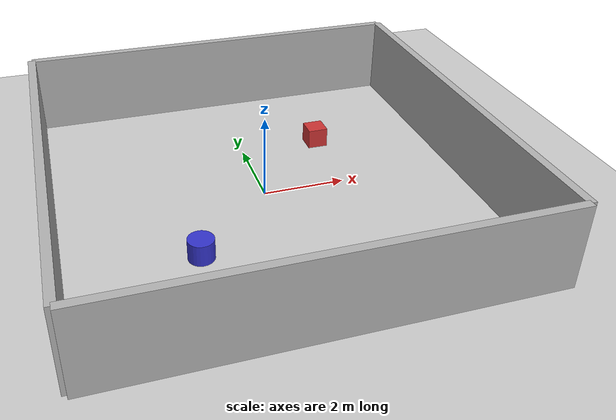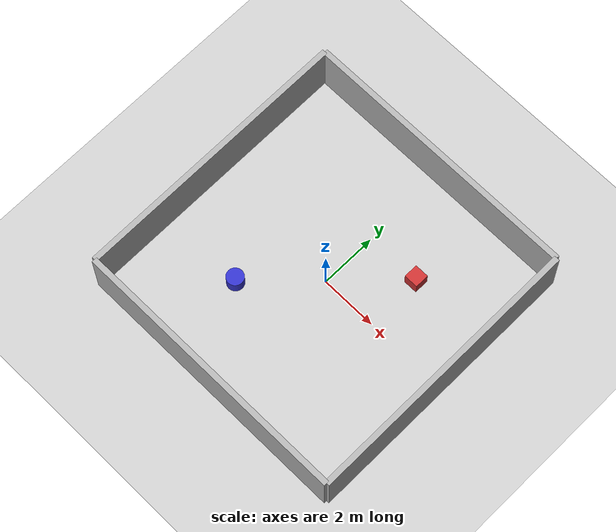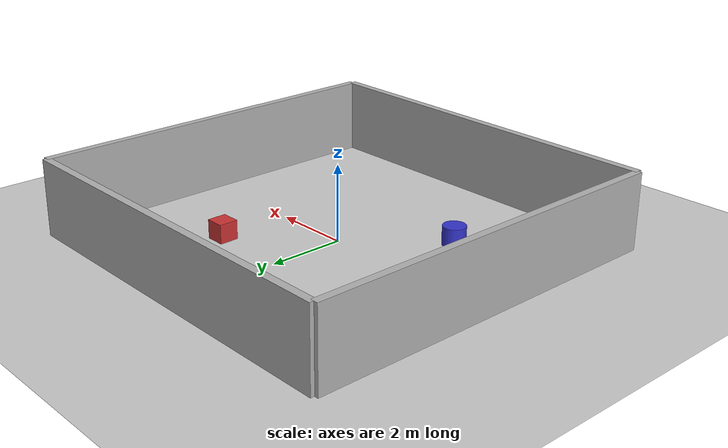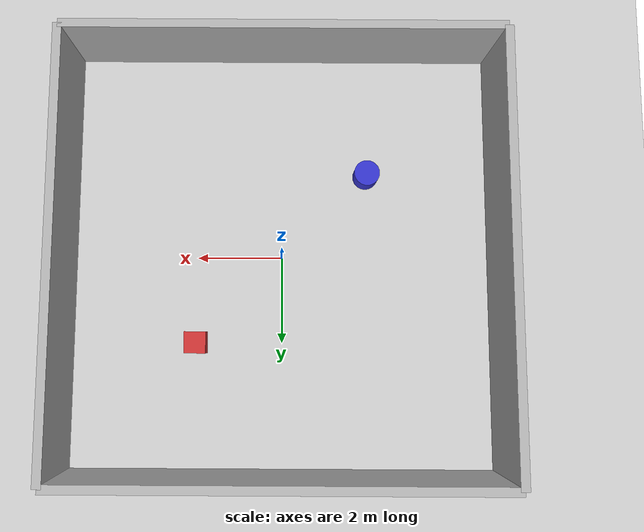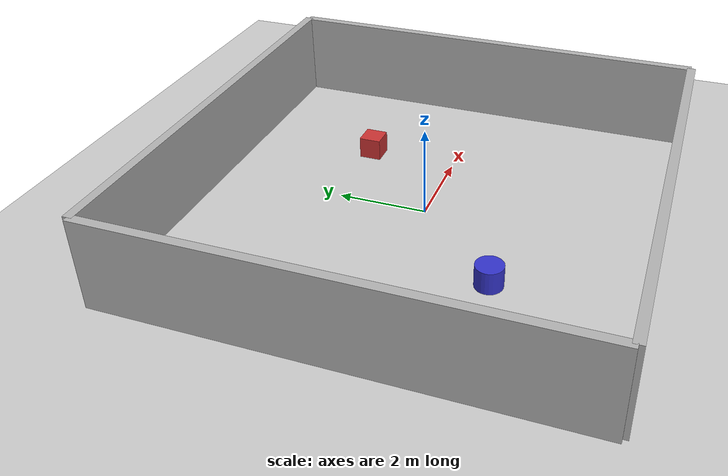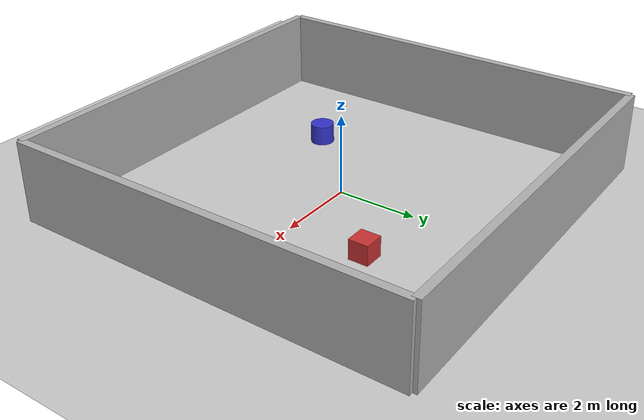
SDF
<?xml version="1.0"?>
<sdf version="1.8">
  <world name="simple_room">

    <!-- Physics -->
    <physics name="1ms" type="ignored">
      <max_step_size>0.001</max_step_size>
      <real_time_factor>1.0</real_time_factor>
    </physics>

    <!-- Plugins -->
    <plugin filename="ignition-gazebo-physics-system" name="ignition::gazebo::systems::Physics"/>
    <plugin filename="ignition-gazebo-user-commands-system" name="ignition::gazebo::systems::UserCommands"/>
    <plugin filename="ignition-gazebo-scene-broadcaster-system" name="ignition::gazebo::systems::SceneBroadcaster"/>

    <!-- Lighting -->
    <light type="directional" name="sun">
      <cast_shadows>true</cast_shadows>
      <pose>0 0 10 0 0 0</pose>
      <diffuse>0.8 0.8 0.8 1</diffuse>
      <specular>0.2 0.2 0.2 1</specular>
      <attenuation>
        <range>1000</range>
        <constant>0.9</constant>
        <linear>0.01</linear>
        <quadratic>0.001</quadratic>
      </attenuation>
      <direction>-0.5 0.1 -0.9</direction>
    </light>

    <!-- Ground plane -->
    <model name="ground_plane">
      <static>true</static>
      <link name="link">
        <collision name="collision">
          <geometry>
            <plane>
              <normal>0 0 1</normal>
              <size>20 20</size>
            </plane>
          </geometry>
        </collision>
        <visual name="visual">
          <geometry>
            <plane>
              <normal>0 0 1</normal>
              <size>20 20</size>
            </plane>
          </geometry>
          <material>
            <ambient>0.8 0.8 0.8 1</ambient>
            <diffuse>0.8 0.8 0.8 1</diffuse>
            <specular>0.8 0.8 0.8 1</specular>
          </material>
        </visual>
      </link>
    </model>

    <!-- Room walls -->
    <model name="wall_1">
      <static>true</static>
      <pose>0 5 1 0 0 0</pose>
      <link name="link">
        <collision name="collision">
          <geometry>
            <box><size>10 0.2 2</size></box>
          </geometry>
        </collision>
        <visual name="visual">
          <geometry>
            <box><size>10 0.2 2</size></box>
          </geometry>
          <material>
            <ambient>0.5 0.5 0.5 1</ambient>
            <diffuse>0.7 0.7 0.7 1</diffuse>
          </material>
        </visual>
      </link>
    </model>

    <model name="wall_2">
      <static>true</static>
      <pose>0 -5 1 0 0 0</pose>
      <link name="link">
        <collision name="collision">
          <geometry>
            <box><size>10 0.2 2</size></box>
          </geometry>
        </collision>
        <visual name="visual">
          <geometry>
            <box><size>10 0.2 2</size></box>
          </geometry>
          <material>
            <ambient>0.5 0.5 0.5 1</ambient>
            <diffuse>0.7 0.7 0.7 1</diffuse>
          </material>
        </visual>
      </link>
    </model>

    <model name="wall_3">
      <static>true</static>
      <pose>5 0 1 0 0 0</pose>
      <link name="link">
        <collision name="collision">
          <geometry>
            <box><size>0.2 10 2</size></box>
          </geometry>
        </collision>
        <visual name="visual">
          <geometry>
            <box><size>0.2 10 2</size></box>
          </geometry>
          <material>
            <ambient>0.5 0.5 0.5 1</ambient>
            <diffuse>0.7 0.7 0.7 1</diffuse>
          </material>
        </visual>
      </link>
    </model>

    <model name="wall_4">
      <static>true</static>
      <pose>-5 0 1 0 0 0</pose>
      <link name="link">
        <collision name="collision">
          <geometry>
            <box><size>0.2 10 2</size></box>
          </geometry>
        </collision>
        <visual name="visual">
          <geometry>
            <box><size>0.2 10 2</size></box>
          </geometry>
          <material>
            <ambient>0.5 0.5 0.5 1</ambient>
            <diffuse>0.7 0.7 0.7 1</diffuse>
          </material>
        </visual>
      </link>
    </model>

    <!-- Obstacles -->
    <model name="obstacle_1">
      <static>true</static>
      <pose>2 2 0.25 0 0 0</pose>
      <link name="link">
        <collision name="collision">
          <geometry>
            <box><size>0.5 0.5 0.5</size></box>
          </geometry>
        </collision>
        <visual name="visual">
          <geometry>
            <box><size>0.5 0.5 0.5</size></box>
          </geometry>
          <material>
            <ambient>0.8 0.2 0.2 1</ambient>
            <diffuse>0.8 0.2 0.2 1</diffuse>
          </material>
        </visual>
      </link>
    </model>

    <model name="obstacle_2">
      <static>true</static>
      <pose>-2 -2 0.25 0 0 0</pose>
      <link name="link">
        <collision name="collision">
          <geometry>
            <cylinder>
              <radius>0.3</radius>
              <length>0.5</length>
            </cylinder>
          </geometry>
        </collision>
        <visual name="visual">
          <geometry>
            <cylinder>
              <radius>0.3</radius>
              <length>0.5</length>
            </cylinder>
          </geometry>
          <material>
            <ambient>0.2 0.2 0.8 1</ambient>
            <diffuse>0.2 0.2 0.8 1</diffuse>
          </material>
        </visual>
      </link>
    </model>

  </world>
</sdf>
